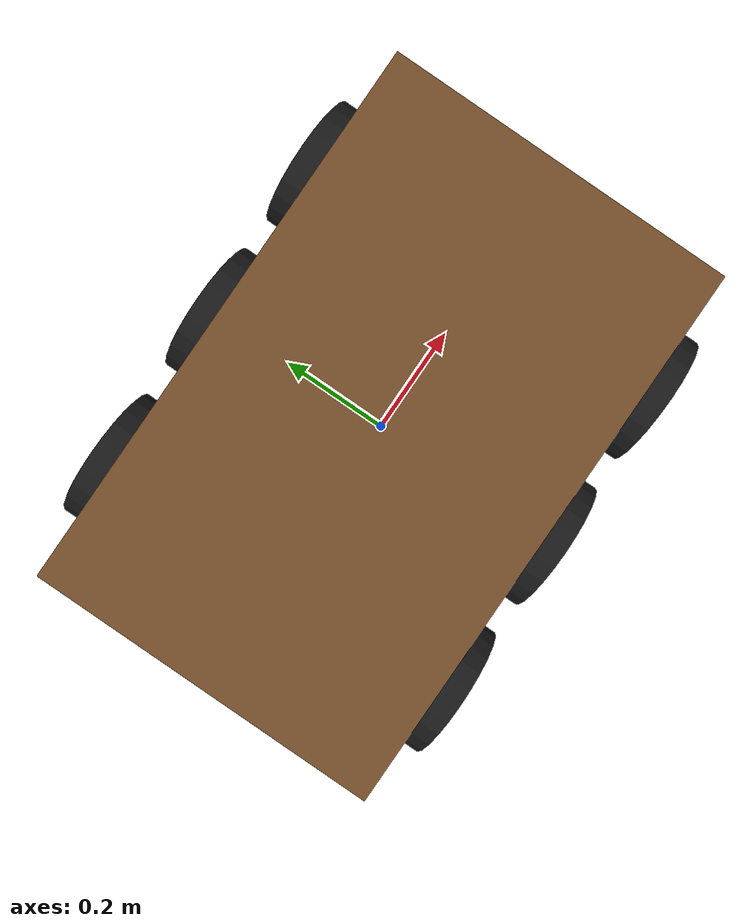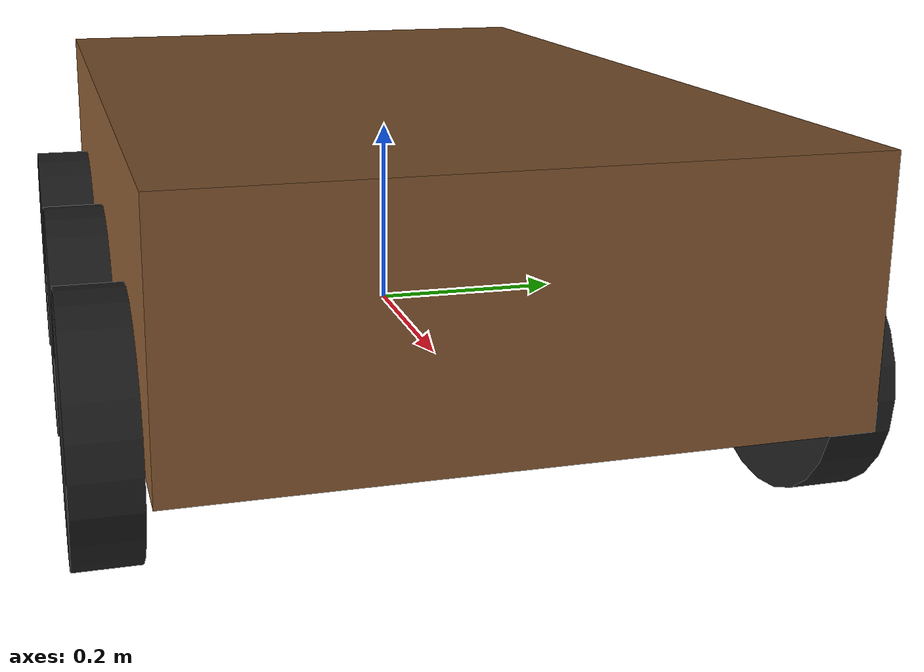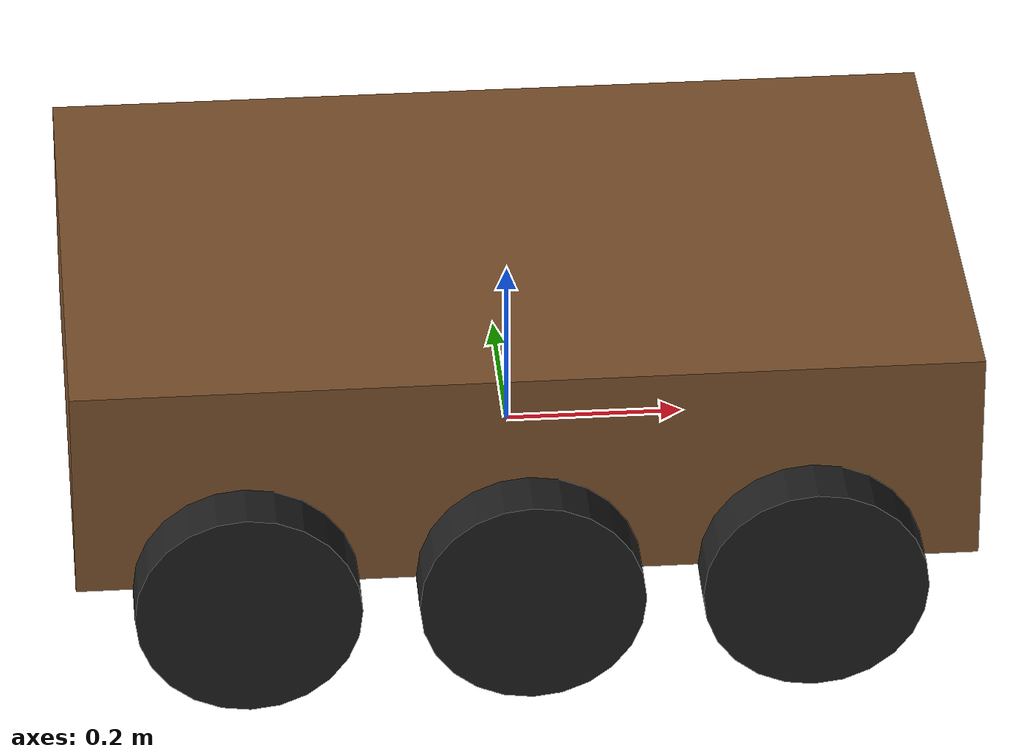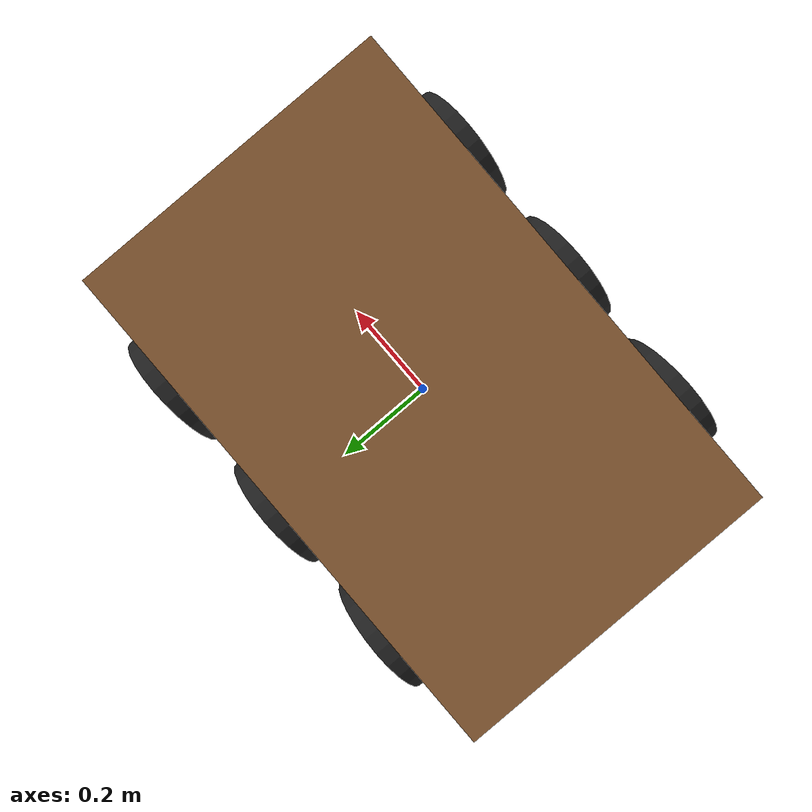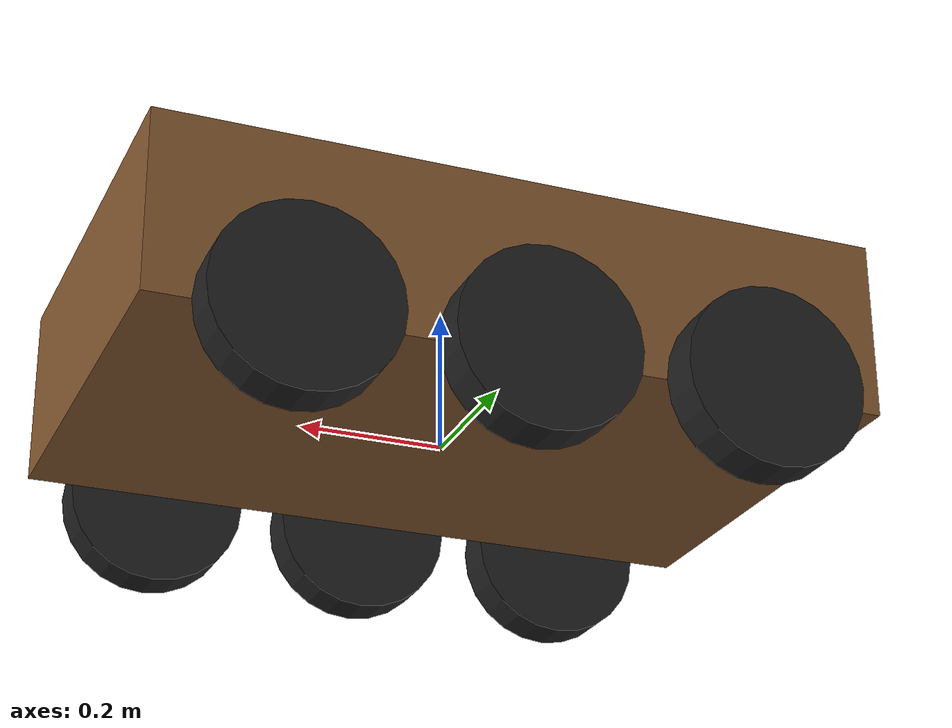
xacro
<?xml version="1.0"?>
<robot xmlns:xacro="http://www.ros.org/wiki/xacro" name="grizzly">

 <!-- Include the Gazebo-specific xacro file -->
 <xacro:include filename="$(find grizzly_gazebo)/urdf/grizzly.gazebo.xacro"/>
 <xacro:include filename="$(find grizzly_gazebo)/urdf/materials.xacro"/>
 <!-- constants -->
 <xacro:property name="deg_to_rad" value="0.017453"/>
 <xacro:property name="pi" value="3.141592653589793"/>

 <!-- wheel and chassis properties -->
 <xacro:property name="wheel_radius" value="0.125"/>
 <xacro:property name="wheel_width" value="0.0625"/>
 <xacro:property name="wheel_mass" value="0.2"/>
 <xacro:property name="chassis_length" value="1.0"/>
 <xacro:property name="chassis_width" value="0.625"/>
 <xacro:property name="chassis_height" value="0.25"/>
 <xacro:property name="chassis_mass" value="10.0"/>

 <!-- cylinder macro for wheels -->
 <xacro:macro name="cylinder_inertia" params ="m r h">
  <inertial>
   <mass value="${m}"/>
   <inertia ixx="${m*(3*r*r+h*h)/12}"  ixy="0.0" ixz="0.0"
            iyy="${m*(3*r*r+h*h)/12}"  iyz= "0.0"
            izz="${m*r*r/2}"/>
   </inertial>
  </xacro:macro>

  <!-- box macro for chassis -->
  <xacro:macro name="box_inertia" params="mass x y z">
    <inertial>
      <mass value="${mass}"/>
      <inertia ixx="${(1/12)*mass*(y*y+z*z)}" ixy="0.0" ixz="0.0"
      iyy="${(1/12)*mass*(x*x+z*z)}" iyz="0.0"
      izz="${(1/12)*mass*(x*x+y*y)}"/>
    </inertial>
  </xacro:macro>

 <!-- Base link -->
 <link name="base_link"></link>

 <!-- Chassis -->
 <joint name="chassis_joint" type="fixed">
  <parent link="base_link"/>
  <child link="chassis"/>
  <origin xyz="0 0 0"/>
 </joint>

 <link name="chassis">
   <visual>
    <origin xyz="0 0 0.125"/>
     <geometry>
       <box size="${chassis_length} ${chassis_width} ${chassis_height}"/>
     </geometry>
     <material name="brown"/>
   </visual>
   <collision>
     <origin xyz="0 0 0.125"/>
     <geometry>
       <box size="${chassis_length} ${chassis_width} ${chassis_height}"/>
     </geometry>
   </collision>
   <xacro:box_inertia mass="${chassis_mass}" x="${chassis_length}" y="${chassis_width}" z="${chassis_height}"/>
 </link>

 <!-- ////////// WHEELS ////////// -->
 <!-- Front Left Wheel -->
 <joint name="wheel_fl_joint" type="continuous">
  <parent link="base_link"/>
  <child link="wheel_fl_link"/>
  <origin xyz="0.3125 ${chassis_width/2+0.03125} 0" rpy="-${pi/2} 0 0"/>
  <axis xyz="0 0 1"/>
 </joint>

 <link name="wheel_fl_link">
    <visual>
      <geometry>
        <cylinder radius="${wheel_radius}" length="${wheel_width}"/>
      </geometry>
      <material name="black"/>
    </visual>
    <collision>
      <geometry>
        <cylinder radius="${wheel_radius}" length="${wheel_width}"/>
      </geometry>
    </collision>
    <xacro:cylinder_inertia m="${wheel_mass}" r="${wheel_radius}" h="${wheel_width}"/>
 </link>

 <transmission name="wheel_fl_trans">
  <type>transmission_interface/SimpleTransmission</type>
  <joint name="wheel_fl_joint">
    <hardwareInterface>hardware_interface/VelocityJointInterface</hardwareInterface>
  </joint>
  <actuator name="wheel_fl_motor">
    <hardwareInterface>hardware_interface/VelocityJointInterface</hardwareInterface>
    <mechanicalReduction>1</mechanicalReduction>
  </actuator>
 </transmission>

 <!-- Mid Left Wheel -->
 <joint name="wheel_ml_joint" type="continuous">
  <parent link="base_link"/>
  <child link="wheel_ml_link"/>
  <origin xyz="0 ${chassis_width/2+0.03125} 0" rpy="-${pi/2} 0 0"/>
  <axis xyz="0 0 1"/>
 </joint>

 <link name="wheel_ml_link">
    <visual>
      <geometry>
        <cylinder radius="${wheel_radius}" length="${wheel_width}"/>
      </geometry>
      <material name="black"/>
    </visual>
    <collision>
      <geometry>
        <cylinder radius="${wheel_radius}" length="${wheel_width}"/>
      </geometry>
    </collision>
    <xacro:cylinder_inertia m="${wheel_mass}" r="${wheel_radius}" h="${wheel_width}"/>
 </link>

 <transmission name="wheel_ml_trans">
  <type>transmission_interface/SimpleTransmission</type>
  <joint name="wheel_ml_joint">
    <hardwareInterface>hardware_interface/VelocityJointInterface</hardwareInterface>
  </joint>
  <actuator name="wheel_ml_motor">
    <hardwareInterface>hardware_interface/VelocityJointInterface</hardwareInterface>
    <mechanicalReduction>1</mechanicalReduction>
  </actuator>
 </transmission>

 <!-- Rear Left Wheel -->
 <joint name="wheel_rl_joint" type="continuous">
  <parent link="base_link"/>
  <child link="wheel_rl_link"/>
  <origin xyz="-0.3125 ${chassis_width/2+0.03125} 0" rpy="-${pi/2} 0 0"/>
  <axis xyz="0 0 1"/>
 </joint>

 <link name="wheel_rl_link">
    <visual>
      <geometry>
        <cylinder radius="${wheel_radius}" length="${wheel_width}"/>
      </geometry>
      <material name="black"/>
    </visual>
    <collision>
      <geometry>
        <cylinder radius="${wheel_radius}" length="${wheel_width}"/>
      </geometry>
    </collision>
    <xacro:cylinder_inertia m="${wheel_mass}" r="${wheel_radius}" h="${wheel_width}"/>
 </link>

 <transmission name="wheel_rl_trans">
  <type>transmission_interface/SimpleTransmission</type>
  <joint name="wheel_rl_joint">
    <hardwareInterface>hardware_interface/VelocityJointInterface</hardwareInterface>
  </joint>
  <actuator name="wheel_rl_motor">
    <hardwareInterface>hardware_interface/VelocityJointInterface</hardwareInterface>
    <mechanicalReduction>1</mechanicalReduction>
  </actuator>
 </transmission>

 <!-- Front Right Wheel -->
 <joint name="wheel_fr_joint" type="continuous">
  <parent link="base_link"/>
  <child link="wheel_fr_link"/>
  <origin xyz="0.3125 ${-chassis_width/2-0.03125} 0" rpy="${pi/2} 0 0"/>
  <axis xyz="0 0 -1"/>
 </joint>

 <link name="wheel_fr_link">
    <visual>
      <geometry>
        <cylinder radius="${wheel_radius}" length="${wheel_width}"/>
      </geometry>
      <material name="black"/>
    </visual>
    <collision>
      <geometry>
        <cylinder radius="${wheel_radius}" length="${wheel_width}"/>
      </geometry>
    </collision>
    <xacro:cylinder_inertia m="${wheel_mass}" r="${wheel_radius}" h="${wheel_width}"/>
 </link>

 <transmission name="wheel_fr_trans">
  <type>transmission_interface/SimpleTransmission</type>
  <joint name="wheel_fr_joint">
    <hardwareInterface>hardware_interface/VelocityJointInterface</hardwareInterface>
  </joint>
  <actuator name="wheel_fr_motor">
    <hardwareInterface>hardware_interface/VelocityJointInterface</hardwareInterface>
    <mechanicalReduction>1</mechanicalReduction>
  </actuator>
 </transmission>

 <!-- Mid Right Wheel -->
 <joint name="wheel_mr_joint" type="continuous">
  <parent link="base_link"/>
  <child link="wheel_mr_link"/>
  <origin xyz="0 ${-chassis_width/2-0.03125} 0" rpy="${pi/2} 0 0"/>
  <axis xyz="0 0 -1"/>
 </joint>

 <link name="wheel_mr_link">
    <visual>
      <geometry>
        <cylinder radius="${wheel_radius}" length="${wheel_width}"/>
      </geometry>
      <material name="black"/>
    </visual>
    <collision>
      <geometry>
        <cylinder radius="${wheel_radius}" length="${wheel_width}"/>
      </geometry>
    </collision>
    <xacro:cylinder_inertia m="${wheel_mass}" r="${wheel_radius}" h="${wheel_width}"/>
 </link>

 <transmission name="wheel_mr_trans">
  <type>transmission_interface/SimpleTransmission</type>
  <joint name="wheel_mr_joint">
    <hardwareInterface>hardware_interface/VelocityJointInterface</hardwareInterface>
  </joint>
  <actuator name="wheel_mr_motor">
    <hardwareInterface>hardware_interface/VelocityJointInterface</hardwareInterface>
    <mechanicalReduction>1</mechanicalReduction>
  </actuator>
 </transmission>

 <!-- Rear Right Wheel -->
 <joint name="wheel_rr_joint" type="continuous">
  <parent link="base_link"/>
  <child link="wheel_rr_link"/>
  <origin xyz="-0.3125 ${-chassis_width/2-0.03125} 0" rpy="${pi/2} 0 0"/>
  <axis xyz="0 0 -1"/>
 </joint>

 <link name="wheel_rr_link">
    <visual>
      <geometry>
        <cylinder radius="${wheel_radius}" length="${wheel_width}"/>
      </geometry>
      <material name="black"/>
    </visual>
    <collision>
      <geometry>
        <cylinder radius="${wheel_radius}" length="${wheel_width}"/>
      </geometry>
    </collision>
    <xacro:cylinder_inertia m="${wheel_mass}" r="${wheel_radius}" h="${wheel_width}"/>
 </link>

 <transmission name="wheel_rr_trans">
  <type>transmission_interface/SimpleTransmission</type>
  <joint name="wheel_rr_joint">
    <hardwareInterface>hardware_interface/VelocityJointInterface</hardwareInterface>
  </joint>
  <actuator name="wheel_rr_motor">
    <hardwareInterface>hardware_interface/VelocityJointInterface</hardwareInterface>
    <mechanicalReduction>1</mechanicalReduction>
  </actuator>
 </transmission>

</robot>
